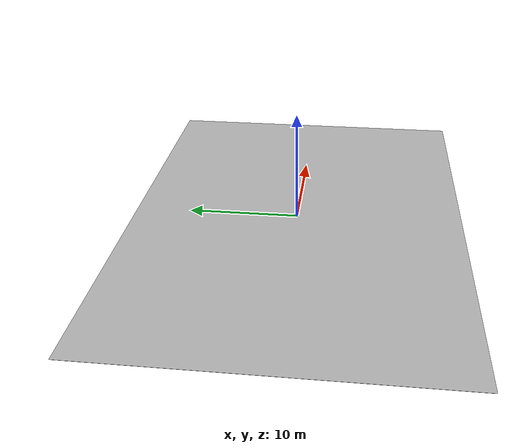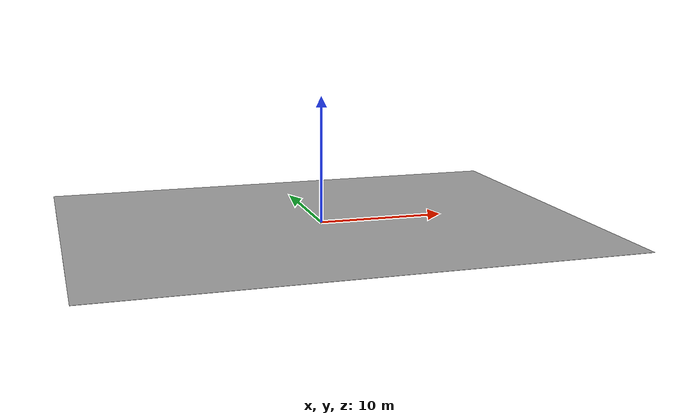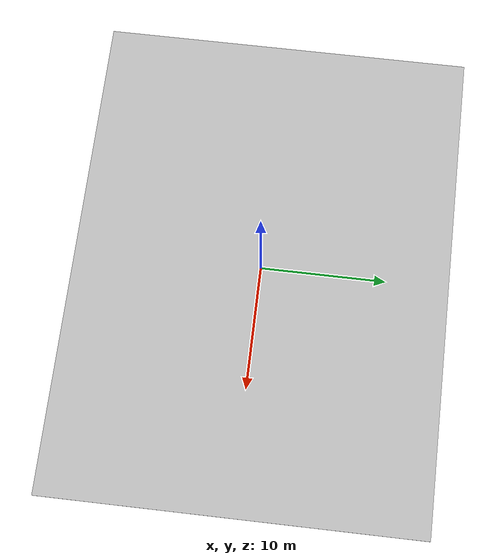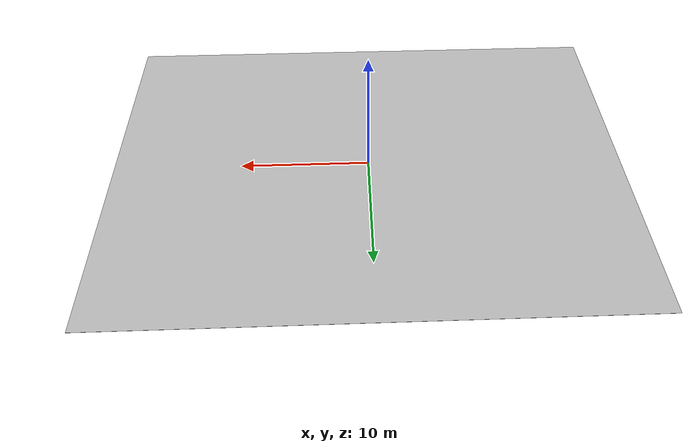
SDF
<?xml version="1.0" ?>
<sdf version="1.6">
  <model name="hil_target_ground">
    <static>true</static>
    <pose>0 0 0.08 0 0 0</pose>
    <link name="link">
      <visual name="visual">
        <cast_shadows>false</cast_shadows>
        <geometry>
          <box>
            <size>40 30 0.02</size>
          </box>
        </geometry>
        <material>
          <script>
            <uri>model://hil_target_ground/materials/scripts</uri>
            <uri>model://hil_target_ground/materials/textures</uri>
            <name>HilTargetGround/Image</name>
          </script>
        </material>
      </visual>
    </link>
  </model>
</sdf>
